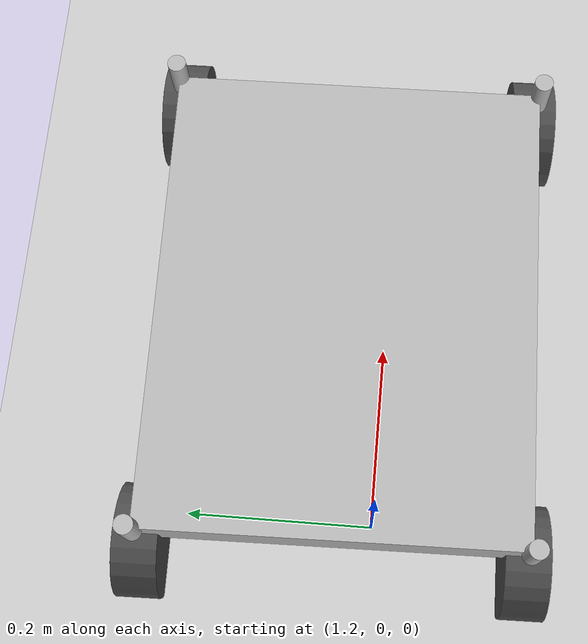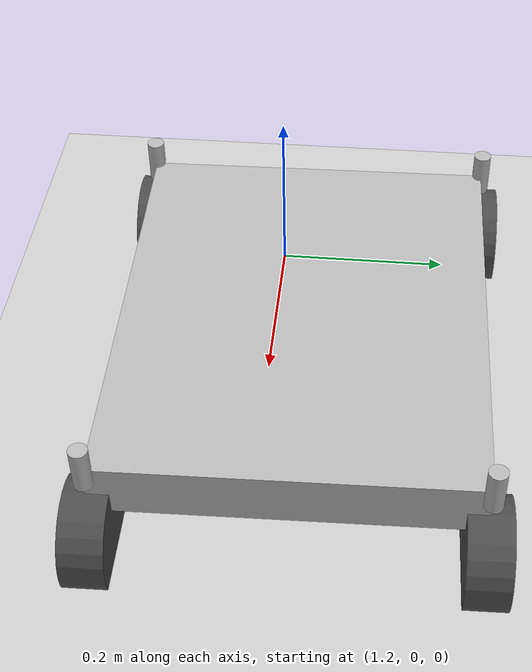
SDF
<sdf version="1.7">
 <world name="default">
  <light name="sun" type="directional">
   <pose>0 0 10 0 -0 0</pose>
   <diffuse>0.8 0.8 0.8 1</diffuse>
   <specular>0.2 0.2 0.2 1</specular>
   <attenuation>
    <range>1000</range>
    <constant>0.9</constant>
    <linear>0.01</linear>
    <quadratic>0.001</quadratic>
   </attenuation>
   <direction>-0.5 0.1 -0.9</direction>
   <spot><inner_angle>0</inner_angle><outer_angle>0</outer_angle><falloff>0</falloff></spot>
  </light>
  <model name="ground_plane">
   <static>1</static>
   <link name="link">
    <collision name="collision">
     <geometry><plane><normal>0 0 1</normal><size>100 100</size></plane></geometry>
     <surface><friction><ode><mu>100</mu><mu2>50</mu2></ode></friction></surface>
    </collision>
    <visual name="visual">
     <cast_shadows>0</cast_shadows>
     <geometry><plane><normal>0 0 1</normal><size>100 100</size></plane></geometry>
     <material>
      <script><uri>file://media/materials/scripts/gazebo.material</uri><name>Gazebo/Grey</name></script>
     </material>
    </visual>
   </link>
  </model>
  <gravity>0 0 -9.8</gravity>
  <magnetic_field>6e-06 2.3e-05 -4.2e-05</magnetic_field>
  <atmosphere type="adiabatic"/>
  <physics type="ode">
   <max_step_size>0.001</max_step_size>
   <real_time_factor>1</real_time_factor>
   <real_time_update_rate>1000</real_time_update_rate>
  </physics>
  <scene><ambient>0.4 0.4 0.4 1</ambient><background>0.7 0.7 0.7 1</background><shadows>1</shadows></scene>
  <audio><device>default</device></audio>
  <spherical_coordinates>
   <surface_model>EARTH_WGS84</surface_model>
   <latitude_deg>0</latitude_deg>
   <longitude_deg>0</longitude_deg>
   <elevation>0</elevation>
   <heading_deg>0</heading_deg>
  </spherical_coordinates>
  <model name="car">
   <link name="base_footprint">
    <inertial>
     <pose>0.25 0 0.02 0 -0 0</pose>
     <mass>7.6</mass>
     <inertia>
      <ixx>0.103613</ixx>
      <ixy>0</ixy>
      <ixz>-2.08167e-17</ixz>
      <iyy>0.160613</iyy>
      <iyz>0</iyz>
      <izz>0.160613</izz>
     </inertia>
    </inertial>
    <collision name="base_footprint_fixed_joint_lump__chassis_link_collision">
     <pose>0.25 0 0.02 0 -0 0</pose>
     <geometry><box><size>0.5 0.4 0.06</size></box></geometry>
    </collision>
    <visual name="base_footprint_fixed_joint_lump__chassis_link_visual">
     <pose>0.25 0 0.02 0 -0 0</pose>
     <geometry><box><size>0.5 0.4 0.06</size></box></geometry>
    </visual>
    <velocity_decay><linear>7e-05</linear><angular>7e-05</angular></velocity_decay>
   </link>
   <joint name="back_left_shock_joint" type="prismatic">
    <pose relative_to="base_footprint">0 0.2 -0.045 0 -0 0</pose>
    <parent>base_footprint</parent>
    <child>back_left_wheel_shock</child>
    <axis>
     <xyz>0 0 1</xyz>
     <limit><lower>0</lower><upper>0.09</upper><effort>100</effort><velocity>100</velocity></limit>
     <dynamics><spring_reference>0</spring_reference><spring_stiffness>0</spring_stiffness></dynamics>
    </axis>
   </joint>
   <link name="back_left_wheel_shock">
    <pose relative_to="back_left_shock_joint">0 0 0 0 -0 0</pose>
    <inertial>
     <mass>0.01</mass>
     <inertia><ixx>0.015</ixx><ixy>0</ixy><ixz>0</ixz><iyy>0.0375</iyy><iyz>0</iyz><izz>0.0375</izz></inertia>
    </inertial>
    <collision name="back_left_wheel_shock_collision">
     <pose>0 0 0.1 0 -0 0</pose>
     <geometry><cylinder><length>0.05</length><radius>0.01</radius></cylinder></geometry>
    </collision>
    <visual name="back_left_wheel_shock_visual">
     <pose>0 0 0.1 0 -0 0</pose>
     <geometry><cylinder><length>0.05</length><radius>0.01</radius></cylinder></geometry>
    </visual>
   </link>
   <joint name="back_left_wheel_joint" type="revolute">
    <pose relative_to="back_left_wheel_shock">0 0 0 -1.5708 0 0</pose>
    <parent>back_left_wheel_shock</parent>
    <child>back_left_wheel</child>
    <axis>
     <xyz>0 0 1</xyz>
     <limit><effort>10000</effort><velocity>500</velocity><lower>-1e+16</lower><upper>1e+16</upper></limit>
     <dynamics><spring_reference>0</spring_reference><spring_stiffness>0</spring_stiffness></dynamics>
    </axis>
   </joint>
   <link name="back_left_wheel">
    <pose relative_to="back_left_wheel_joint">0 0 0 0 -0 0</pose>
    <inertial>
     <mass>0.1</mass>
     <inertia>
      <ixx>0.000108408</ixx>
      <ixy>0</ixy>
      <ixz>0</ixz>
      <iyy>0.000108408</iyy>
      <iyz>0</iyz>
      <izz>0.00018</izz>
     </inertia>
    </inertial>
    <collision name="back_left_wheel_collision">
     <geometry><cylinder><length>0.047</length><radius>0.06</radius></cylinder></geometry>
     <surface><friction><ode><mu>2</mu></ode></friction></surface>
    </collision>
    <visual name="back_left_wheel_visual">
     <geometry><cylinder><length>0.047</length><radius>0.06</radius></cylinder></geometry>
     <material>
      <script><name>Gazebo/DarkGrey</name><uri>file://media/materials/scripts/gazebo.material</uri></script>
     </material>
    </visual>
   </link>
   <joint name="back_right_shock_joint" type="prismatic">
    <pose relative_to="base_footprint">0 -0.2 -0.045 0 -0 0</pose>
    <parent>base_footprint</parent>
    <child>back_right_wheel_shock</child>
    <axis>
     <xyz>0 0 1</xyz>
     <limit><lower>0</lower><upper>0.09</upper><effort>100</effort><velocity>100</velocity></limit>
     <dynamics><spring_reference>0</spring_reference><spring_stiffness>0</spring_stiffness></dynamics>
    </axis>
   </joint>
   <link name="back_right_wheel_shock">
    <pose relative_to="back_right_shock_joint">0 0 0 0 -0 0</pose>
    <inertial>
     <mass>0.01</mass>
     <inertia><ixx>0.015</ixx><ixy>0</ixy><ixz>0</ixz><iyy>0.0375</iyy><iyz>0</iyz><izz>0.0375</izz></inertia>
    </inertial>
    <collision name="back_right_wheel_shock_collision">
     <pose>0 0 0.1 0 -0 0</pose>
     <geometry><cylinder><length>0.05</length><radius>0.01</radius></cylinder></geometry>
    </collision>
    <visual name="back_right_wheel_shock_visual">
     <pose>0 0 0.1 0 -0 0</pose>
     <geometry><cylinder><length>0.05</length><radius>0.01</radius></cylinder></geometry>
    </visual>
   </link>
   <joint name="back_right_wheel_joint" type="revolute">
    <pose relative_to="back_right_wheel_shock">0 0 0 -1.5708 0 0</pose>
    <parent>back_right_wheel_shock</parent>
    <child>back_right_wheel</child>
    <axis>
     <xyz>0 0 1</xyz>
     <limit><effort>10000</effort><velocity>500</velocity><lower>-1e+16</lower><upper>1e+16</upper></limit>
     <dynamics><spring_reference>0</spring_reference><spring_stiffness>0</spring_stiffness></dynamics>
    </axis>
   </joint>
   <link name="back_right_wheel">
    <pose relative_to="back_right_wheel_joint">0 0 0 0 -0 0</pose>
    <inertial>
     <mass>0.1</mass>
     <inertia>
      <ixx>0.000108408</ixx>
      <ixy>0</ixy>
      <ixz>0</ixz>
      <iyy>0.000108408</iyy>
      <iyz>0</iyz>
      <izz>0.00018</izz>
     </inertia>
    </inertial>
    <collision name="back_right_wheel_collision">
     <geometry><cylinder><length>0.047</length><radius>0.06</radius></cylinder></geometry>
     <surface><friction><ode><mu>2</mu></ode></friction></surface>
    </collision>
    <visual name="back_right_wheel_visual">
     <geometry><cylinder><length>0.047</length><radius>0.06</radius></cylinder></geometry>
     <material>
      <script><name>Gazebo/DarkGrey</name><uri>file://media/materials/scripts/gazebo.material</uri></script>
     </material>
    </visual>
   </link>
   <joint name="front_left_shock_joint" type="prismatic">
    <pose relative_to="base_footprint">0.5 0.2 -0.045 0 -0 0</pose>
    <parent>base_footprint</parent>
    <child>front_left_wheel_shock</child>
    <axis>
     <xyz>0 0 1</xyz>
     <limit><lower>0</lower><upper>0.09</upper><effort>100</effort><velocity>100</velocity></limit>
     <dynamics><spring_reference>0</spring_reference><spring_stiffness>0</spring_stiffness></dynamics>
    </axis>
   </joint>
   <link name="front_left_wheel_shock">
    <pose relative_to="front_left_shock_joint">0 0 0 0 -0 0</pose>
    <inertial>
     <mass>0.01</mass>
     <inertia><ixx>0.015</ixx><ixy>0</ixy><ixz>0</ixz><iyy>0.0375</iyy><iyz>0</iyz><izz>0.0375</izz></inertia>
    </inertial>
    <collision name="front_left_wheel_shock_collision">
     <pose>0 0 0.1 0 -0 0</pose>
     <geometry><cylinder><length>0.05</length><radius>0.01</radius></cylinder></geometry>
    </collision>
    <visual name="front_left_wheel_shock_visual">
     <pose>0 0 0.1 0 -0 0</pose>
     <geometry><cylinder><length>0.05</length><radius>0.01</radius></cylinder></geometry>
    </visual>
   </link>
   <joint name="front_left_wheel_steer_joint" type="revolute">
    <pose relative_to="front_left_wheel_shock">0 0 0 0 -0 0</pose>
    <parent>front_left_wheel_shock</parent>
    <child>front_left_wheel_steer</child>
    <axis>
     <xyz>0 0 1</xyz>
     <limit><lower>-1</lower><upper>1</upper><effort>1</effort><velocity>5</velocity></limit>
     <dynamics><spring_reference>0</spring_reference><spring_stiffness>0</spring_stiffness></dynamics>
    </axis>
   </joint>
   <link name="front_left_wheel_steer">
    <pose relative_to="front_left_wheel_steer_joint">0 0 0 0 -0 0</pose>
    <inertial>
     <mass>0.1</mass>
     <inertia>
      <ixx>5.1458e-05</ixx>
      <ixy>0</ixy>
      <ixz>0</ixz>
      <iyy>5.1458e-05</iyy>
      <iyz>0</iyz>
      <izz>6.125e-05</izz>
     </inertia>
    </inertial>
    <collision name="front_left_wheel_steer_collision">
     <geometry><cylinder><length>0.01</length><radius>0.01</radius></cylinder></geometry>
    </collision>
    <visual name="front_left_wheel_steer_visual">
     <geometry><cylinder><length>0.01</length><radius>0.01</radius></cylinder></geometry>
    </visual>
   </link>
   <joint name="front_left_wheel_joint" type="revolute">
    <pose relative_to="front_left_wheel_steer">0 0 0 -1.5708 0 0</pose>
    <parent>front_left_wheel_steer</parent>
    <child>front_left_wheel</child>
    <axis>
     <xyz>0 0 1</xyz>
     <limit><lower>-1e+16</lower><upper>1e+16</upper></limit>
     <dynamics><spring_reference>0</spring_reference><spring_stiffness>0</spring_stiffness></dynamics>
    </axis>
   </joint>
   <link name="front_left_wheel">
    <pose relative_to="front_left_wheel_joint">0 0 0 0 -0 0</pose>
    <inertial>
     <mass>0.1</mass>
     <inertia>
      <ixx>0.000108408</ixx>
      <ixy>0</ixy>
      <ixz>0</ixz>
      <iyy>0.000108408</iyy>
      <iyz>0</iyz>
      <izz>0.00018</izz>
     </inertia>
    </inertial>
    <collision name="front_left_wheel_collision">
     <geometry><cylinder><length>0.047</length><radius>0.06</radius></cylinder></geometry>
     <surface><friction><ode><mu>2</mu></ode></friction></surface>
    </collision>
    <visual name="front_left_wheel_visual">
     <geometry><cylinder><length>0.047</length><radius>0.06</radius></cylinder></geometry>
     <material>
      <script><name>Gazebo/DarkGrey</name><uri>file://media/materials/scripts/gazebo.material</uri></script>
     </material>
    </visual>
   </link>
   <joint name="front_right_shock_joint" type="prismatic">
    <pose relative_to="base_footprint">0.5 -0.2 -0.045 0 -0 0</pose>
    <parent>base_footprint</parent>
    <child>front_right_wheel_shock</child>
    <axis>
     <xyz>0 0 1</xyz>
     <limit><lower>0</lower><upper>0.09</upper><effort>100</effort><velocity>100</velocity></limit>
     <dynamics><spring_reference>0</spring_reference><spring_stiffness>0</spring_stiffness></dynamics>
    </axis>
   </joint>
   <link name="front_right_wheel_shock">
    <pose relative_to="front_right_shock_joint">0 0 0 0 -0 0</pose>
    <inertial>
     <mass>0.01</mass>
     <inertia><ixx>0.015</ixx><ixy>0</ixy><ixz>0</ixz><iyy>0.0375</iyy><iyz>0</iyz><izz>0.0375</izz></inertia>
    </inertial>
    <collision name="front_right_wheel_shock_collision">
     <pose>0 0 0.1 0 -0 0</pose>
     <geometry><cylinder><length>0.05</length><radius>0.01</radius></cylinder></geometry>
    </collision>
    <visual name="front_right_wheel_shock_visual">
     <pose>0 0 0.1 0 -0 0</pose>
     <geometry><cylinder><length>0.05</length><radius>0.01</radius></cylinder></geometry>
    </visual>
   </link>
   <joint name="front_right_wheel_steer_joint" type="revolute">
    <pose relative_to="front_right_wheel_shock">0 0 0 0 -0 0</pose>
    <parent>front_right_wheel_shock</parent>
    <child>front_right_wheel_steer</child>
    <axis>
     <xyz>0 0 1</xyz>
     <limit><lower>-1</lower><upper>1</upper><effort>1</effort><velocity>5</velocity></limit>
     <dynamics><spring_reference>0</spring_reference><spring_stiffness>0</spring_stiffness></dynamics>
    </axis>
   </joint>
   <link name="front_right_wheel_steer">
    <pose relative_to="front_right_wheel_steer_joint">0 0 0 0 -0 0</pose>
    <inertial>
     <mass>0.1</mass>
     <inertia>
      <ixx>5.1458e-05</ixx>
      <ixy>0</ixy>
      <ixz>0</ixz>
      <iyy>5.1458e-05</iyy>
      <iyz>0</iyz>
      <izz>6.125e-05</izz>
     </inertia>
    </inertial>
    <collision name="front_right_wheel_steer_collision">
     <geometry><cylinder><length>0.01</length><radius>0.01</radius></cylinder></geometry>
    </collision>
    <visual name="front_right_wheel_steer_visual">
     <geometry><cylinder><length>0.01</length><radius>0.01</radius></cylinder></geometry>
    </visual>
   </link>
   <joint name="front_right_wheel_joint" type="revolute">
    <pose relative_to="front_right_wheel_steer">0 0 0 -1.5708 0 0</pose>
    <parent>front_right_wheel_steer</parent>
    <child>front_right_wheel</child>
    <axis>
     <xyz>0 0 1</xyz>
     <limit><lower>-1e+16</lower><upper>1e+16</upper></limit>
     <dynamics><spring_reference>0</spring_reference><spring_stiffness>0</spring_stiffness></dynamics>
    </axis>
   </joint>
   <link name="front_right_wheel">
    <pose relative_to="front_right_wheel_joint">0 0 0 0 -0 0</pose>
    <inertial>
     <mass>0.1</mass>
     <inertia>
      <ixx>0.000108408</ixx>
      <ixy>0</ixy>
      <ixz>0</ixz>
      <iyy>0.000108408</iyy>
      <iyz>0</iyz>
      <izz>0.00018</izz>
     </inertia>
    </inertial>
    <collision name="front_right_wheel_collision">
     <geometry><cylinder><length>0.047</length><radius>0.06</radius></cylinder></geometry>
     <surface><friction><ode><mu>2</mu></ode></friction></surface>
    </collision>
    <visual name="front_right_wheel_visual">
     <geometry><cylinder><length>0.047</length><radius>0.06</radius></cylinder></geometry>
     <material>
      <script><name>Gazebo/DarkGrey</name><uri>file://media/materials/scripts/gazebo.material</uri></script>
     </material>
    </visual>
   </link>
   <static>0</static>
   <plugin name="car_gazebo_plugin" filename="libcar_gazebo_plugin.so"/>
   <pose>1.16957 0.0394 0.067744 5.5e-05 1.5e-05 0.017836</pose>
  </model>
 </world>
</sdf>
